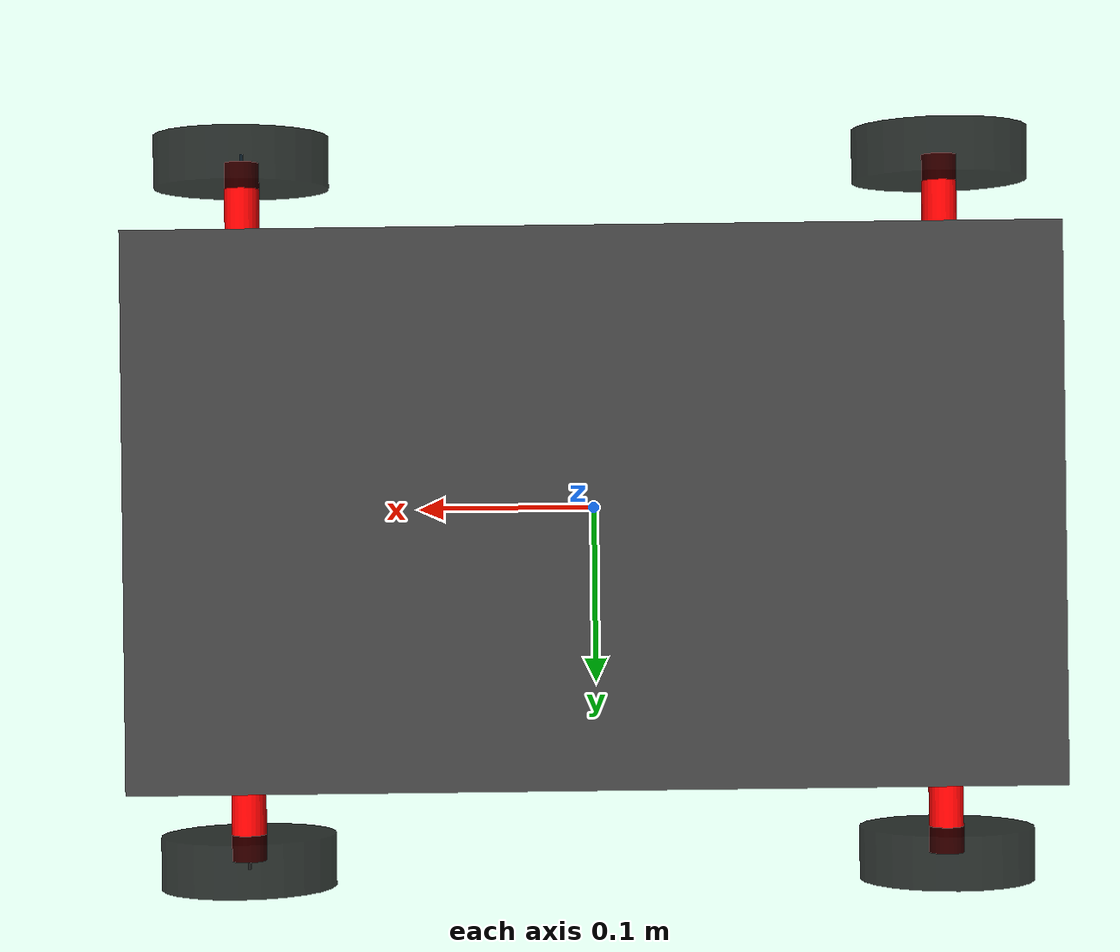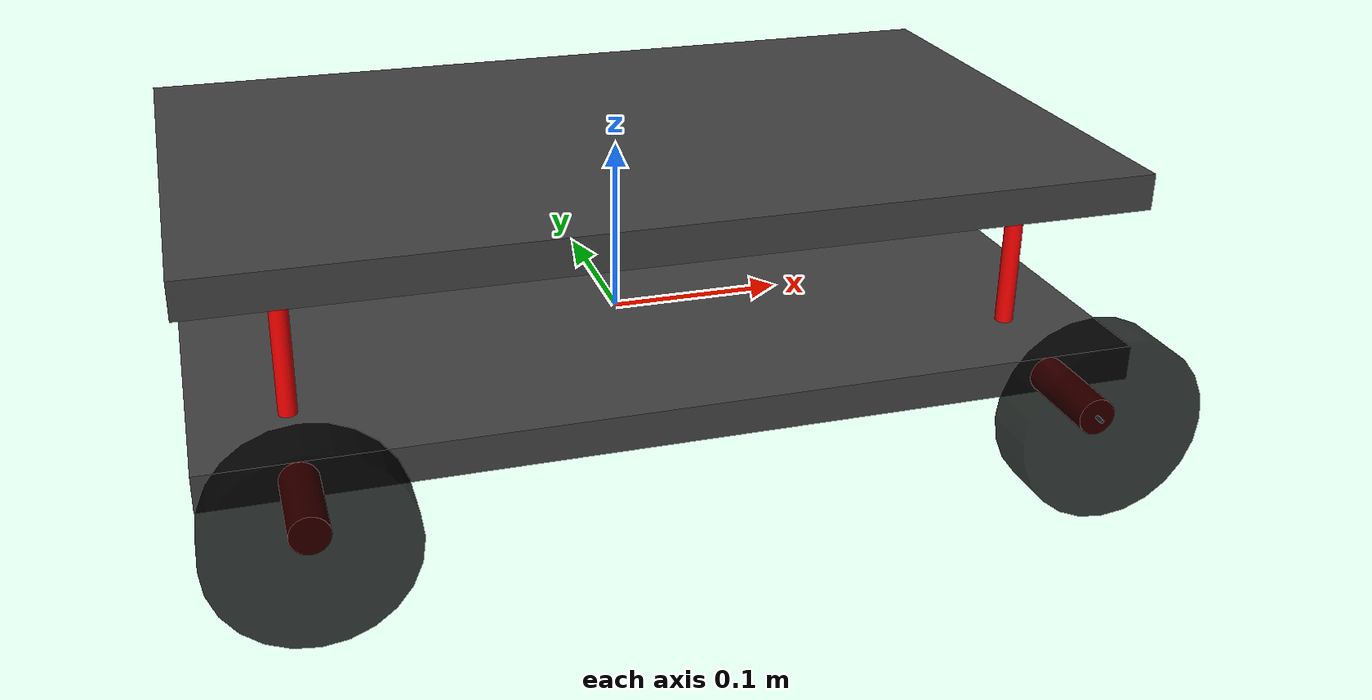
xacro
<?xml version="1.0"?>

<!-- This is the main file for the robot. it contains many other xacro files all included
 in one place. -->
<robot name="my_robot"
  xmlns:xacro="http://ros.org/wiki/xacro">

  <xacro:include filename="robot_core.xacro" />
  <xacro:include filename="gazebo_parameters.xacro" />
  <xacro:include filename="ros2_control.xacro" />
  <xacro:include filename="transmission.xacro" />
  <xacro:include filename="odom_plugin.xacro" />
</robot>

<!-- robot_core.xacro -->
<!-- This is the main structure of the robot. it has links, joints and material properties-->
<robot xmlns:xacro="http://ros.org/wiki/xacro">

  <!--xacro:property name="pi" value="3.14159" /-->

  <xacro:include filename="materials.xacro" />
  <xacro:include filename="robot_physical_properties.xacro" />
  <xacro:include filename="inertial_macros.xacro" />

  <link name="base_footprint">
  </link>

  <joint name="base_joint" type="fixed">
    <parent link="base_footprint" />
    <child link="bottom_link" />
    <origin xyz="0 0 0" rpy="0 0 0" />
  </joint>

  <!-- Bottom link of the robot -->
  <link name="bottom_link">
    <visual>
      <origin xyz="0 0 0" rpy="0 0 0"/>
      <geometry>
        <box size="${bottom_link_length} ${bottom_link_width} ${bottom_link_height}" />
      </geometry>
      <material name="grey"/>
    </visual>
    <collision>
      <geometry>
        <box size="${bottom_link_length} ${bottom_link_width} ${bottom_link_height}" />
      </geometry>
    </collision>
    <xacro:inertial_box mass="${bottom_link_mass}" x="${bottom_link_length}" y="${bottom_link_width}" z="${bottom_link_height}">
      <origin xyz="0 0 0" rpy="0 0 0"/>
    </xacro:inertial_box>
  </link>

  <link name="front_left_wheel_connector">
    <visual>
      <origin xyz="0 0 0" rpy="0 0 0" />
      <geometry>
        <cylinder radius="${wheel_connector_radius}" length="${wheel_connector_length}" />
      </geometry>
      <material name="red"/>
    </visual>
    <collision>
      <origin xyz="0 0 0" rpy="0 0 0" />
      <geometry>
        <cylinder radius="${wheel_connector_radius}" length="${wheel_connector_length}" />
      </geometry>
    </collision>
    <xacro:inertial_cylinder mass="${wheel_connector_mass}" length="${wheel_connector_length}" radius="${wheel_connector_radius}">
      <origin xyz="0 0 0" rpy="0 0 0"/>
    </xacro:inertial_cylinder>
  </link>

  <link name="front_right_wheel_connector">
    <visual>
      <origin xyz="0 0 0" rpy="0 0 0" />
      <geometry>
        <cylinder radius="${wheel_connector_radius}" length="${wheel_connector_length}" />
      </geometry>
      <material name="red"/>
    </visual>
    <collision>
      <origin xyz="0 0 0" rpy="0 0 0" />
      <geometry>
        <cylinder radius="${wheel_connector_radius}" length="${wheel_connector_length}" />
      </geometry>
    </collision>
    <xacro:inertial_cylinder mass="${wheel_connector_mass}" length="${wheel_connector_length}" radius="${wheel_connector_radius}">
      <origin xyz="0 0 0" rpy="0 0 0"/>
    </xacro:inertial_cylinder>
  </link>

  <link name="rear_left_wheel_connector">
    <visual>
      <origin xyz="0 0 0" rpy="0 0 0" />
      <geometry>
        <cylinder radius="${wheel_connector_radius}" length="${wheel_connector_length}" />
      </geometry>
      <material name="red"/>
    </visual>
    <collision>
      <origin xyz="0 0 0" rpy="0 0 0" />
      <geometry>
        <cylinder radius="${wheel_connector_radius}" length="${wheel_connector_length}" />
      </geometry>
    </collision>
    <xacro:inertial_cylinder mass="${wheel_connector_mass}" length="${wheel_connector_length}" radius="${wheel_connector_radius}">
      <origin xyz="0 0 0" rpy="0 0 0"/>
    </xacro:inertial_cylinder>
  </link>

  <link name="rear_right_wheel_connector">
    <visual>
      <origin xyz="0 0 0" rpy="0 0 0" />
      <geometry>
        <cylinder radius="${wheel_connector_radius}" length="${wheel_connector_length}" />
      </geometry>
      <material name="red"/>
    </visual>
    <collision>
      <origin xyz="0 0 0" rpy="0 0 0" />
      <geometry>
        <cylinder radius="${wheel_connector_radius}" length="${wheel_connector_length}" />
      </geometry>
    </collision>
    <xacro:inertial_cylinder mass="${wheel_connector_mass}" length="${wheel_connector_length}" radius="${wheel_connector_radius}">
      <origin xyz="0 0 0" rpy="0 0 0"/>
    </xacro:inertial_cylinder>
  </link>

  <!-- Front left wheel -->
  <link name="front_left_wheel_link">
    <visual>
      <origin xyz="0 0 0" rpy="0 0 0"/>
      <geometry>
        <cylinder radius="${wheel_radius}" length="${wheel_length}" />
      </geometry>
      <material name="black"/>
    </visual>
    <collision>
      <origin xyz="0 0 0" rpy="0 0 0"/>
      <geometry>
        <cylinder radius="${wheel_radius}" length="${wheel_length}" />
      </geometry>
    </collision>
    <xacro:inertial_cylinder mass="${wheel_mass}" length="${wheel_length}" radius="${wheel_radius}">
      <origin xyz="0 0 0" rpy="0 0 0"/>
    </xacro:inertial_cylinder>
  </link>

  <!-- Front left wheel steering -->
  <link name="front_left_steering_link">
    <visual>
      <origin xyz="0 0 0" rpy="0 0 0" />
      <geometry>
        <cylinder radius="0.001" length="0.01" />
      </geometry>
    </visual>
    <collision>
      <origin xyz="0 0 0" rpy="0 0 0" />
      <geometry>
        <cylinder radius="0.001" length="0.01" />
      </geometry>
    </collision>
    <xacro:inertial_cylinder mass="0.001" length="0.001" radius="0.01">
      <origin xyz="0 0 0" rpy="0 0 0"/>
    </xacro:inertial_cylinder>
  </link>

  <!-- Front right wheel -->
  <link name="front_right_wheel_link">
    <visual>
      <origin xyz="0 0 0" rpy="0 0 0"/>
      <geometry>
        <cylinder radius="${wheel_radius}" length="${wheel_length}" />
      </geometry>
      <material name="black"/>
    </visual>
    <collision>
      <origin xyz="0 0 0" rpy="0 0 0"/>
      <geometry>
        <cylinder radius="${wheel_radius}" length="${wheel_length}" />
      </geometry>
    </collision>
    <xacro:inertial_cylinder mass="${wheel_mass}" length="${wheel_length}" radius="${wheel_radius}">
      <origin xyz="0 0 0" rpy="0 0 0"/>
    </xacro:inertial_cylinder>
  </link>

  <!-- Front right wheel steering -->
  <link name="front_right_steering_link">
    <visual>
      <origin xyz="0 0 0" rpy="0 0 0" />
      <geometry>
        <cylinder radius="0.001" length="0.01" />
      </geometry>
    </visual>
    <collision>
      <origin xyz="0 0 0" rpy="0 0 0" />
      <geometry>
        <cylinder radius="0.001" length="0.01" />
      </geometry>
    </collision>
    <xacro:inertial_cylinder mass="0.001" length="0.001" radius="0.01">
      <origin xyz="0 0 0" rpy="0 0 0"/>
    </xacro:inertial_cylinder>
  </link>

  <!-- Rear Left Wheel-->
  <link name="rear_left_wheel_link">
    <visual>
      <origin xyz="0 0 0" rpy="0 0 0"/>
      <geometry>
        <cylinder radius="${wheel_radius}" length="${wheel_length}" />
      </geometry>
      <material name="black"/>
    </visual>
    <collision>
      <origin xyz="0 0 0" rpy="0 0 0"/>
      <geometry>
        <cylinder radius="${wheel_radius}" length="${wheel_length}" />
      </geometry>
    </collision>
    <xacro:inertial_cylinder mass="${wheel_mass}" length="${wheel_length}" radius="${wheel_radius}">
      <origin xyz="0 0 0" rpy="0 0 0"/>
    </xacro:inertial_cylinder>
  </link>

  <!-- Rear right wheel -->
  <link name="rear_right_wheel_link">
    <visual>
      <origin xyz="0 0 0" rpy="0 0 0"/>
      <geometry>
        <cylinder radius="${wheel_radius}" length="${wheel_length}" />
      </geometry>
      <material name="black"/>
    </visual>
    <collision>
      <origin xyz="0 0 0" rpy="0 0 0"/>
      <geometry>
        <cylinder radius="${wheel_radius}" length="${wheel_length}" />
      </geometry>
    </collision>
    <xacro:inertial_cylinder mass="${wheel_mass}" length="${wheel_length}" radius="${wheel_radius}">
      <origin xyz="0 0 0" rpy="0 0 0"/>
    </xacro:inertial_cylinder>
  </link>

  <!-- Bottom Joints-->

  <joint name="front_left_wheel_connector_joint" type="fixed">
    <parent link="bottom_link" />
    <child link="front_left_wheel_connector" />
    <origin xyz="${bottom_link_length/2-0.05} ${bottom_link_width/2} 0" rpy="-${3.1459/2} 0 0" />
  </joint>

  <joint name="front_left_steering_joint" type="revolute">
    <parent link="front_left_wheel_connector" />
    <child link="front_left_steering_link" />
    <origin xyz="0 0 ${wheel_connector_length/2}" rpy="0 0 0" />
    <axis xyz="0 1 0" />
    <limit lower="-1.0" upper="1.0" effort="100" velocity="100" />
  </joint>

  <joint name="front_left_wheel_joint" type="continuous">
    <parent link="front_left_steering_link" />
    <child link="front_left_wheel_link" />
    <origin xyz="0 0 0" rpy="0 0 0" />
    <axis xyz="0 0 1" />
    <limit effort="100" velocity="100" />
  </joint>

  <joint name="front_right_wheel_connector_joint" type="fixed">
    <parent link="bottom_link" />
    <child link="front_right_wheel_connector" />
    <origin xyz="${bottom_link_length/2-0.05} -${bottom_link_width/2} 0" rpy="-${3.1459/2} 0 0" />
  </joint>

  <joint name="front_right_steering_joint" type="revolute">
    <parent link="front_right_wheel_connector" />
    <child link="front_right_steering_link" />
    <origin xyz="0 0 -${wheel_connector_length/2}" rpy="0 0 0" />
    <axis xyz="0 1 0" />
    <limit lower="-1.0" upper="1.0" effort="100" velocity="100" />
  </joint>

  <joint name="front_right_wheel_joint" type="continuous">
    <parent link="front_right_steering_link" />
    <child link="front_right_wheel_link" />
    <origin xyz="0 0 0" rpy="0 0 0" />
    <axis xyz="0 0 1" />
    <limit effort="100" velocity="100" />
  </joint>

  <joint name="rear_left_wheel_connector_joint" type="fixed">
    <parent link="bottom_link" />
    <child link="rear_left_wheel_connector" />
    <origin xyz="-${bottom_link_length/2-0.05} ${bottom_link_width/2} 0" rpy="-${3.1459/2} 0 0" />
  </joint>

  <joint name="rear_right_wheel_connector_joint" type="fixed">
    <parent link="bottom_link" />
    <child link="rear_right_wheel_connector" />
    <origin xyz="-${bottom_link_length/2-0.05} -${bottom_link_width/2} 0" rpy="-${3.1459/2} 0 0" />
  </joint>

  <joint name="rear_left_wheel_joint" type="continuous">
    <parent link="rear_left_wheel_connector" />
    <child link="rear_left_wheel_link" />
    <origin xyz="0 0 ${wheel_connector_length/2}" rpy="0 0 0" />
    <axis xyz="0 0 1" />
    <limit effort="100" velocity="100" />
  </joint>

  <joint name="rear_right_wheel_joint" type="continuous">
    <parent link="rear_right_wheel_connector" />
    <child link="rear_right_wheel_link" />
    <origin xyz="0 0 -${wheel_connector_length/2}" rpy="0 0 0" />
    <axis xyz="0 0 1" />
    <limit effort="100" velocity="100" />
  </joint>

  <!-- TOP LINKS -->
  <link name="top_link">
    <visual>
      <origin xyz="0 0 0" rpy="0 0 0"/>
      <geometry>
        <box size="${top_link_length} ${top_link_width} ${top_link_height}" />
      </geometry>
      <material name="grey"/>
    </visual>
    <collision>
      <geometry>
        <box size="${top_link_length} ${top_link_width} ${top_link_height}" />
      </geometry>
    </collision>
    <xacro:inertial_box mass="${top_link_mass}" x="${top_link_length}" y="${top_link_width}" z="${top_link_height}">
      <origin xyz="0 0 0" rpy="0 0 0"/>
    </xacro:inertial_box>
  </link>

  <link name="front_left_to_top_connector">
    <visual>
      <origin xyz="0 0 ${bottom_to_top_connector_length/2}" rpy="0 0 0" />
      <geometry>
        <cylinder radius="${bottom_to_top_connector_radius}" length="${bottom_to_top_connector_length}" />
      </geometry>
      <material name="red"/>
    </visual>
    <collision>
      <origin xyz="0 0 ${bottom_to_top_connector_length/2}" rpy="0 0 0" />
      <geometry>
        <cylinder radius="${bottom_to_top_connector_radius}" length="${bottom_to_top_connector_length}" />
      </geometry>
    </collision>
    <xacro:inertial_cylinder mass="${bottom_to_top_connector_mass}" length="${bottom_to_top_connector_length}" radius="${bottom_to_top_connector_radius}">
      <origin xyz="0 0 0" rpy="0 0 0"/>
    </xacro:inertial_cylinder>
  </link>

  <link name="front_right_to_top_connector">
    <visual>
      <origin xyz="0 0 ${bottom_to_top_connector_length/2}" rpy="0 0 0" />
      <geometry>
        <cylinder radius="${bottom_to_top_connector_radius}" length="${bottom_to_top_connector_length}" />
      </geometry>
      <material name="red"/>
    </visual>
    <collision>
      <origin xyz="0 0 ${bottom_to_top_connector_length/2}" rpy="0 0 0" />
      <geometry>
        <cylinder radius="${bottom_to_top_connector_radius}" length="${bottom_to_top_connector_length}" />
      </geometry>
    </collision>
    <xacro:inertial_cylinder mass="${bottom_to_top_connector_mass}" length="${bottom_to_top_connector_length}" radius="${bottom_to_top_connector_radius}">
      <origin xyz="0 0 0" rpy="0 0 0"/>
    </xacro:inertial_cylinder>
  </link>

  <link name="rear_left_to_top_connector">
    <visual>
      <origin xyz="0 0 ${bottom_to_top_connector_length/2}" rpy="0 0 0" />
      <geometry>
        <cylinder radius="${bottom_to_top_connector_radius}" length="${bottom_to_top_connector_length}" />
      </geometry>
      <material name="red"/>
    </visual>
    <collision>
      <origin xyz="0 0 ${bottom_to_top_connector_length/2}" rpy="0 0 0" />
      <geometry>
        <cylinder radius="${bottom_to_top_connector_radius}" length="${bottom_to_top_connector_length}" />
      </geometry>
    </collision>
    <xacro:inertial_cylinder mass="${bottom_to_top_connector_mass}" length="${bottom_to_top_connector_length}" radius="${bottom_to_top_connector_radius}">
      <origin xyz="0 0 0" rpy="0 0 0"/>
    </xacro:inertial_cylinder>
  </link>

  <link name="rear_right_to_top_connector">
    <visual>
      <origin xyz="0 0 ${bottom_to_top_connector_length/2}" rpy="0 0 0" />
      <geometry>
        <cylinder radius="${bottom_to_top_connector_radius}" length="${bottom_to_top_connector_length}" />
      </geometry>
      <material name="red"/>
    </visual>
    <collision>
      <origin xyz="0 0 ${bottom_to_top_connector_length/2}" rpy="0 0 0" />
      <geometry>
        <cylinder radius="${bottom_to_top_connector_radius}" length="${bottom_to_top_connector_length}" />
      </geometry>
    </collision>
    <xacro:inertial_cylinder mass="${bottom_to_top_connector_mass}" length="${bottom_to_top_connector_length}" radius="${bottom_to_top_connector_radius}">
      <origin xyz="0 0 0" rpy="0 0 0"/>
    </xacro:inertial_cylinder>
  </link>

  <!--TOP JOINTS-->
  <joint name="front_left_bottom_joint" type="fixed">
    <parent link="bottom_link" />
    <child link="front_left_to_top_connector" />
    <origin xyz="${bottom_link_length/2-0.05} ${bottom_link_width/2-0.05} 0" rpy="0 0 0" />
  </joint>

  <joint name="front_right_bottom_joint" type="fixed">
    <parent link="bottom_link" />
    <child link="front_right_to_top_connector" />
    <origin xyz="${bottom_link_length/2-0.05} -${bottom_link_width/2-0.05} 0" rpy="0 0 0" />
  </joint>

  <joint name="rear_left_bottom_joint" type="fixed">
    <parent link="bottom_link" />
    <child link="rear_left_to_top_connector" />
    <origin xyz="-${bottom_link_length/2-0.05} ${bottom_link_width/2-0.05} 0" rpy="0 0 0" />
  </joint>

  <joint name="rear_right_bottom_joint" type="fixed">
    <parent link="bottom_link" />
    <child link="rear_right_to_top_connector" />
    <origin xyz="-${bottom_link_length/2-0.05} -${bottom_link_width/2-0.05} 0" rpy="0 0 0" />
  </joint>

  <joint name="front_left_top_joint" type="fixed">
    <parent link="front_left_to_top_connector" />
    <child link="top_link" />
    <origin xyz="-${top_link_length/2-0.05} -${bottom_link_width/2-0.05} ${bottom_to_top_connector_length}" rpy="0 0 0" />
  </joint>

</robot>

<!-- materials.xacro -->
<robot xmlns:xacro="http://ros.org/wiki/xacro">

  <material name="black">
    <color rgba=" 0 0 0 0.8" />
  </material>

  <material name="white">
    <color rgba=" 1 1 1 1" />
  </material>

  <material name="red">
    <color rgba=" 1 0 0 1" />
  </material>

  <material name="green">
    <color rgba=" 0 1 0 1" />
  </material>

  <material name="blue">
    <color rgba=" 0 0 1 1" />
  </material>

  <material name="grey">
    <color rgba="0.25 0.25 0.25 1.0" />
  </material>

</robot>

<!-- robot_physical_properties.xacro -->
<robot xmlns:xacro="http://ros.org/wiki/xacro">

  <xacro:property name="wheel_radius" value="0.05" />
  <xacro:property name="wheel_length" value="0.03" />
  <xacro:property name="wheel_mass" value="0.2" />

  <xacro:property name="bottom_link_length" value="0.5" />
  <xacro:property name="bottom_link_width" value="0.3" />
  <xacro:property name="bottom_link_height" value="0.02" />
  <xacro:property name="bottom_link_mass" value="1.0" />

  <xacro:property name="top_link_length" value="0.5" />
  <xacro:property name="top_link_width" value="0.3" />
  <xacro:property name="top_link_height" value="0.02" />
  <xacro:property name="top_link_mass" value="1.0" />

  <xacro:property name="wheel_connector_length" value="0.1" />
  <xacro:property name="wheel_connector_radius" value="0.01" />
  <xacro:property name="wheel_connector_mass" value="0.01" />

  <xacro:property name="bottom_to_top_connector_length" value="0.1" />
  <xacro:property name="bottom_to_top_connector_radius" value="0.005" />
  <xacro:property name="bottom_to_top_connector_mass" value="0.01"/>

</robot>

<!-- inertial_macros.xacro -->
<robot xmlns:xacro="http://ros.org/wiki/xacro">

  <xacro:macro name="inertial_box" params="mass x y z *origin">
    <inertial>
      <xacro:insert_block name="origin"/>
      <mass value="${mass}" />
      <inertia ixx="${(1/12) * mass * (y*y+z*z)}" ixy="0.0" ixz="0.0" iyy="${(1/12) * mass * (x*x+z*z)}" iyz="0.0" izz="${(1/12) * mass * (x*x+y*y)}" />
    </inertial>
  </xacro:macro>

  <xacro:macro name="inertial_cylinder" params="mass length radius *origin">
    <inertial>
      <xacro:insert_block name="origin"/>
      <mass value="${mass}" />
      <inertia ixx="${(1/12) * mass * (3*radius*radius + length*length)}" ixy="0.0" ixz="0.0" iyy="${(1/12) * mass * (3*radius*radius + length*length)}" iyz="0.0" izz="${(1/2) * mass * (radius*radius)}" />
    </inertial>
  </xacro:macro>

</robot>
